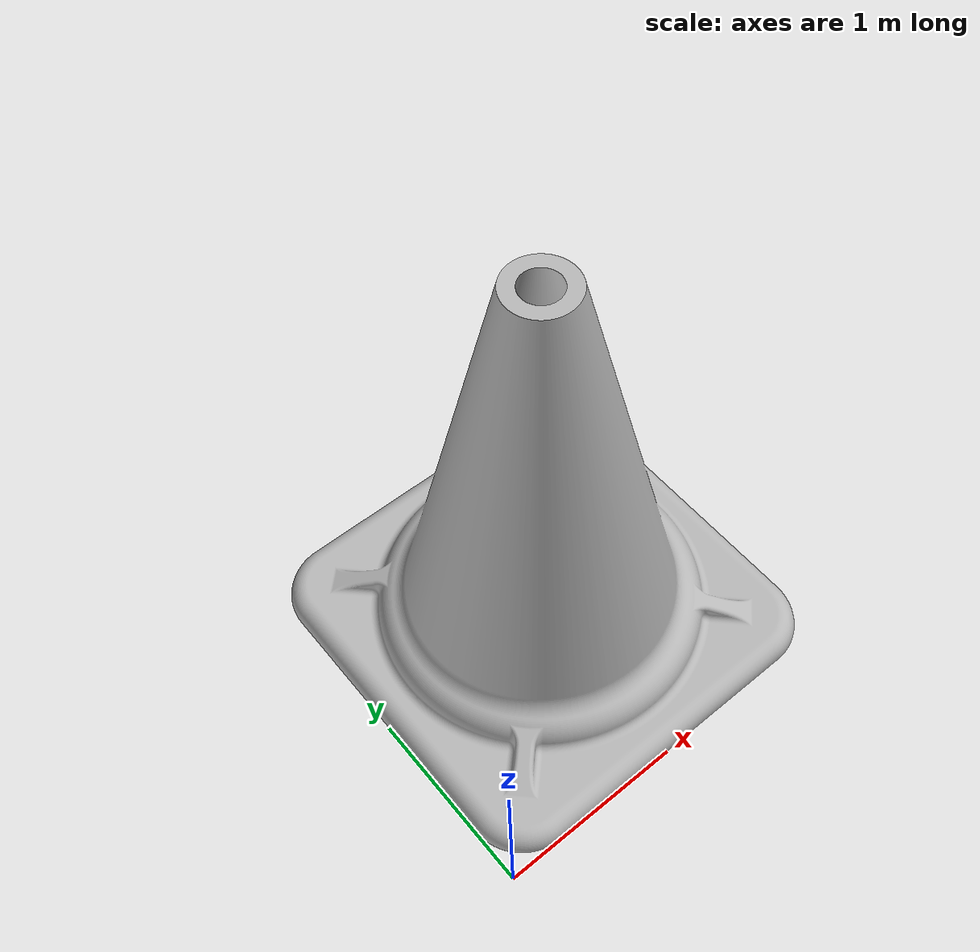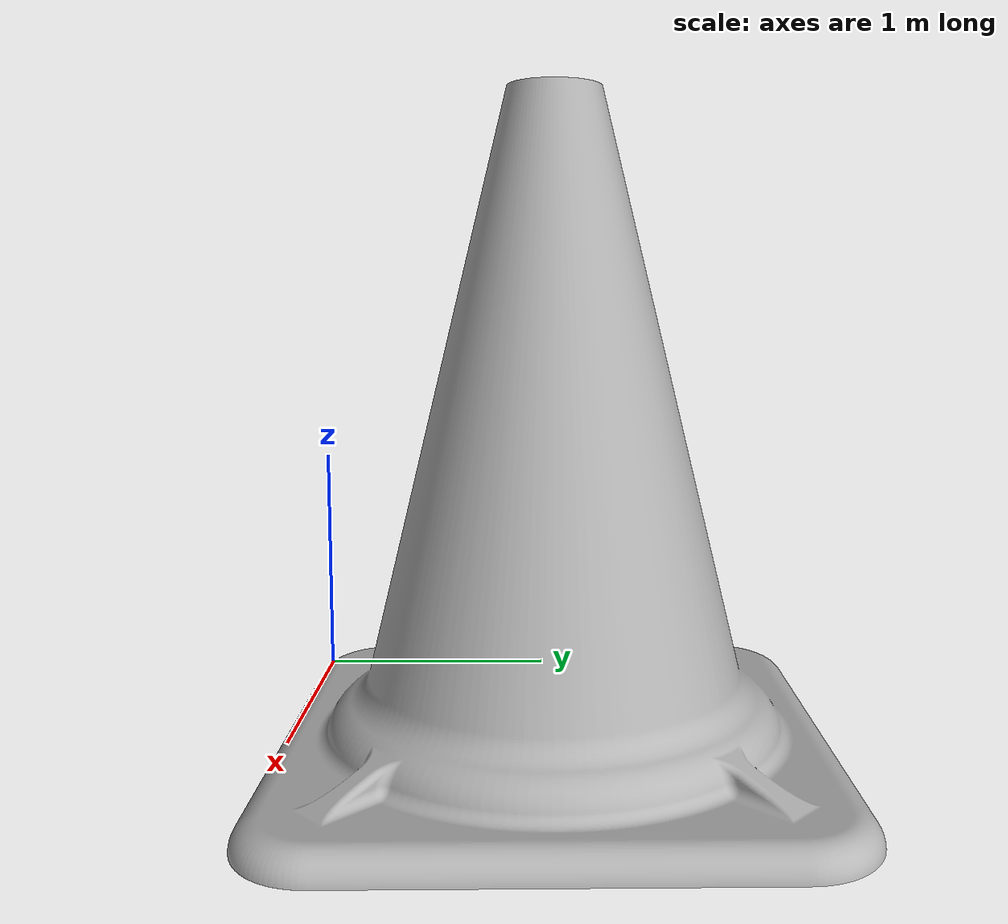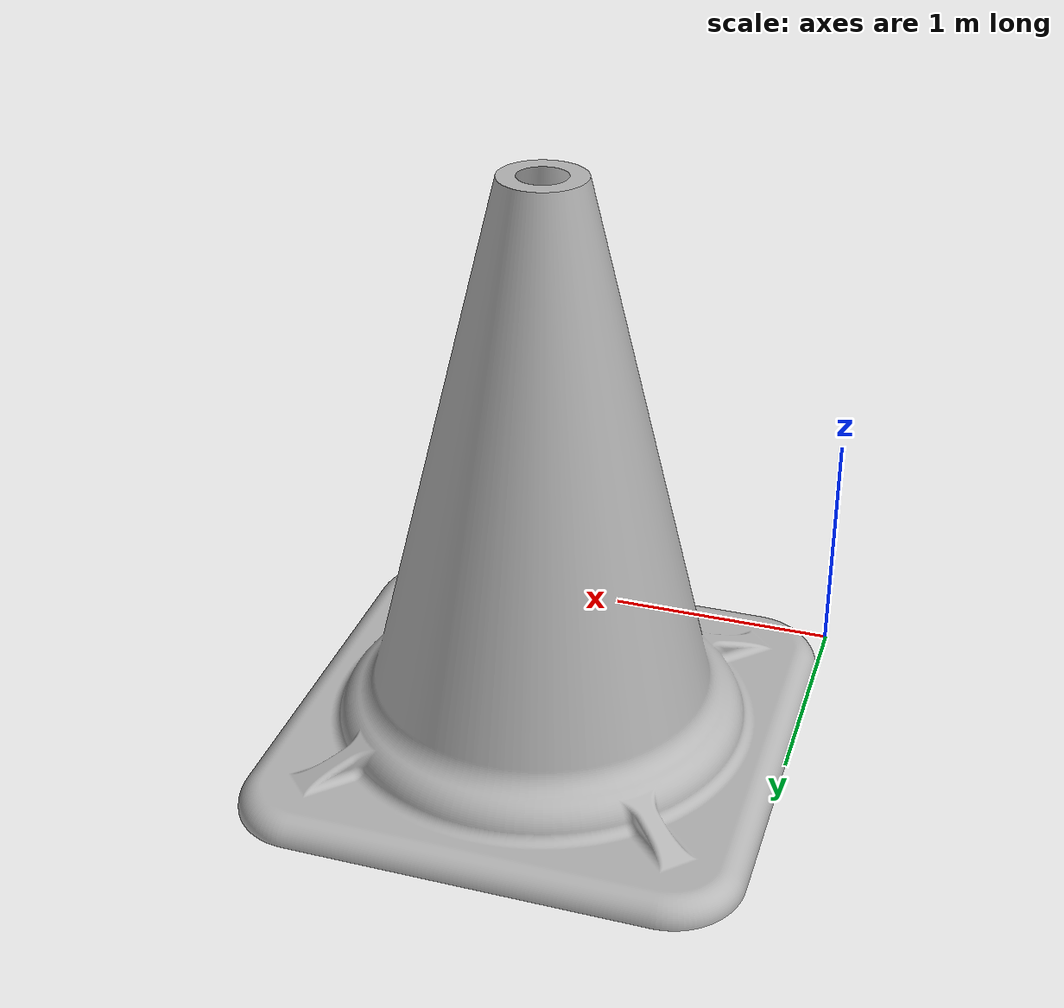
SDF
<?xml version="1.0" ?>
<sdf version="1.5">
  <model name="traffic_cone">
    <static>true</static>
    <link name="link">
      <collision name="collision">
        <pose>0 0 0 0 0 0</pose>
        <geometry>
          <mesh>
            <uri>model://traffic_cone/meshes/traffic_cone.stl</uri>
            <scale>0.01 0.01 0.01</scale>
          </mesh>
        </geometry>
      </collision>

      <visual name="visual">
        <cast_shadows>false</cast_shadows>
        <pose>0 0 0 0 0 0</pose>
        <geometry>
          <mesh>
            <uri>model://traffic_cone/meshes/traffic_cone.stl</uri>
            <scale>0.05 0.05 0.05</scale>
          </mesh>
        </geometry>
      </visual>
    </link>
  </model>
</sdf>
